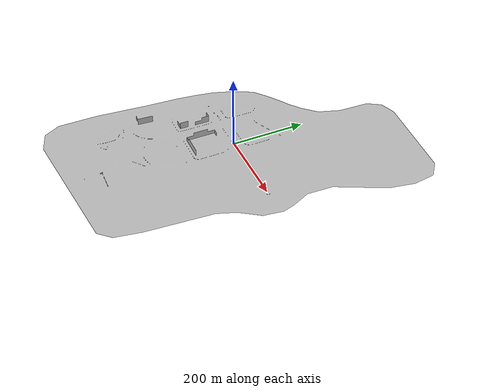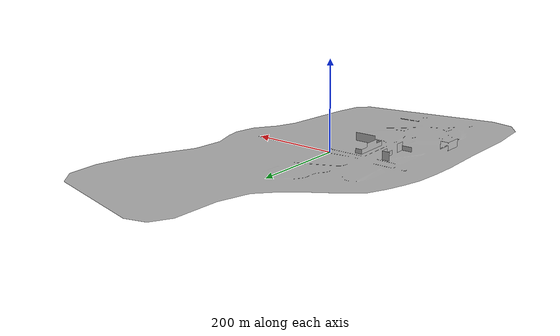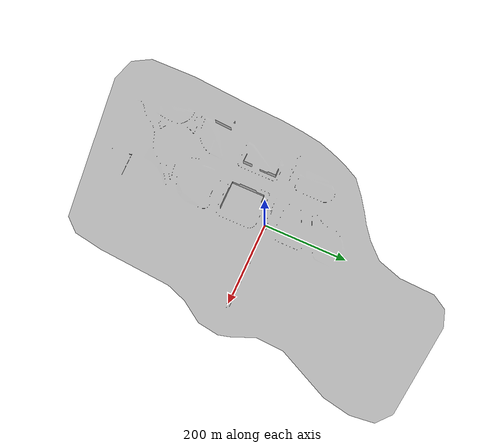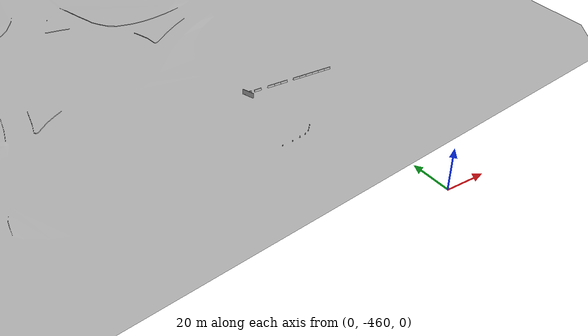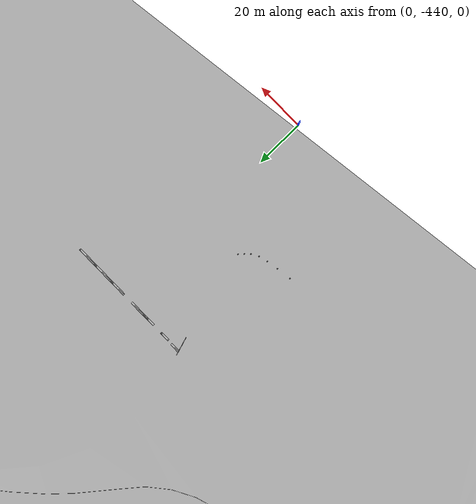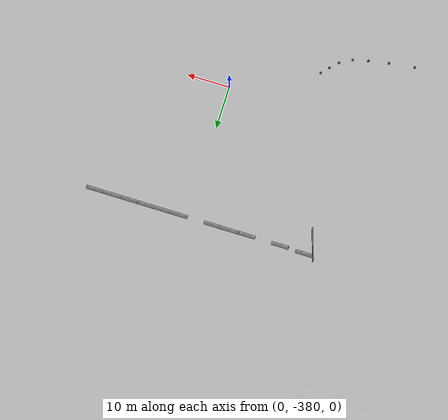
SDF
<sdf version="1.6">
 <world name="default">
  <light name="sun" type="directional">
   <pose>0 0 10 0 -0 0</pose>
   <diffuse>0.8 0.8 0.8 1</diffuse>
   <specular>0.2 0.2 0.2 1</specular>
   <attenuation>
    <range>1000</range>
    <constant>0.9</constant>
    <linear>0.01</linear>
    <quadratic>0.001</quadratic>
   </attenuation>
   <direction>-0.5 0.1 -0.9</direction>
  </light>
  <model name="cafe">
   <static>1</static>
   <link name="link">
    <collision name="collision">
     <geometry><mesh><scale>0.254 0.254 0.254</scale><uri>model://mcity/meshes/mcity.obj</uri></mesh></geometry>
    </collision>
    <visual name="visual">
     <geometry><mesh><scale>0.254 0.254 0.254</scale><uri>model://mcity/meshes/mcity.obj</uri></mesh></geometry>
    </visual>
   </link>
  </model>
  <gravity>0 0 -9.8</gravity>
  <magnetic_field>6e-06 2.3e-05 -4.2e-05</magnetic_field>
  <atmosphere type="adiabatic"/>
  <physics name="default_physics" default="0" type="ode">
   <max_step_size>0.004</max_step_size>
   <real_time_factor>1</real_time_factor>
   <real_time_update_rate>250</real_time_update_rate>
  </physics>
  <scene><ambient>0.4 0.4 0.4 1</ambient><background>0.7 0.7 0.7 1</background><shadows>1</shadows></scene>
  <audio><device>default</device></audio>
  <spherical_coordinates>
   <surface_model>EARTH_WGS84</surface_model>
   <latitude_deg>0</latitude_deg>
   <longitude_deg>0</longitude_deg>
   <elevation>0</elevation>
   <heading_deg>0</heading_deg>
  </spherical_coordinates>
  <model name="jersey_barrier">
   <static>1</static>
   <link name="link">
    <visual name="visual">
     <geometry><mesh><uri>model://jersey_barrier/meshes/jersey_barrier.dae</uri></mesh></geometry>
    </visual>
    <collision name="upright">
     <pose>0 0 0.5715 0 -0 0</pose>
     <geometry><box><size>4.06542 0.3063 1.143</size></box></geometry>
    </collision>
    <collision name="base">
     <pose>0 0 0.032258 0 -0 0</pose>
     <geometry><box><size>4.06542 0.8107 0.064516</size></box></geometry>
    </collision>
    <collision name="base2">
     <pose>0 0 0.1 0 -0 0</pose>
     <geometry><box><size>4.06542 0.65 0.1</size></box></geometry>
    </collision>
    <collision name="base3">
     <pose>0 0 0.2 0 -0 0</pose>
     <geometry><box><size>4.06542 0.5 0.1</size></box></geometry>
    </collision>
    <collision name="left-angle">
     <pose>0 -0.224 0.2401 0.9 -0 0</pose>
     <geometry><box><size>4.06542 0.5 0.064516</size></box></geometry>
    </collision>
    <collision name="right-angle">
     <pose>0 0.224 0.2401 -0.9 0 0</pose>
     <geometry><box><size>4.06542 0.5 0.064516</size></box></geometry>
    </collision>
   </link>
   <pose>-27.7486 -347.795 0 0 -0 0</pose>
  </model>
  <model name="jersey_barrier_clone">
   <static>1</static>
   <link name="link">
    <visual name="visual">
     <geometry><mesh><uri>model://jersey_barrier/meshes/jersey_barrier.dae</uri></mesh></geometry>
    </visual>
    <collision name="upright">
     <pose>0 0 0.5715 0 -0 0</pose>
     <geometry><box><size>4.06542 0.3063 1.143</size></box></geometry>
    </collision>
    <collision name="base">
     <pose>0 0 0.032258 0 -0 0</pose>
     <geometry><box><size>4.06542 0.8107 0.064516</size></box></geometry>
    </collision>
    <collision name="base2">
     <pose>0 0 0.1 0 -0 0</pose>
     <geometry><box><size>4.06542 0.65 0.1</size></box></geometry>
    </collision>
    <collision name="base3">
     <pose>0 0 0.2 0 -0 0</pose>
     <geometry><box><size>4.06542 0.5 0.1</size></box></geometry>
    </collision>
    <collision name="left-angle">
     <pose>0 -0.224 0.2401 0.9 -0 0</pose>
     <geometry><box><size>4.06542 0.5 0.064516</size></box></geometry>
    </collision>
    <collision name="right-angle">
     <pose>0 0.224 0.2401 -0.9 0 0</pose>
     <geometry><box><size>4.06542 0.5 0.064516</size></box></geometry>
    </collision>
   </link>
   <pose>-22 -348 0 0 -0 0</pose>
  </model>
  <model name="jersey_barrier_clone_clone_clone">
   <static>1</static>
   <link name="link">
    <visual name="visual">
     <geometry><mesh><uri>model://jersey_barrier/meshes/jersey_barrier.dae</uri></mesh></geometry>
    </visual>
    <collision name="upright">
     <pose>0 0 0.5715 0 -0 0</pose>
     <geometry><box><size>4.06542 0.3063 1.143</size></box></geometry>
    </collision>
    <collision name="base">
     <pose>0 0 0.032258 0 -0 0</pose>
     <geometry><box><size>4.06542 0.8107 0.064516</size></box></geometry>
    </collision>
    <collision name="base2">
     <pose>0 0 0.1 0 -0 0</pose>
     <geometry><box><size>4.06542 0.65 0.1</size></box></geometry>
    </collision>
    <collision name="base3">
     <pose>0 0 0.2 0 -0 0</pose>
     <geometry><box><size>4.06542 0.5 0.1</size></box></geometry>
    </collision>
    <collision name="left-angle">
     <pose>0 -0.224 0.2401 0.9 -0 0</pose>
     <geometry><box><size>4.06542 0.5 0.064516</size></box></geometry>
    </collision>
    <collision name="right-angle">
     <pose>0 0.224 0.2401 -0.9 0 0</pose>
     <geometry><box><size>4.06542 0.5 0.064516</size></box></geometry>
    </collision>
   </link>
   <pose>-14.0215 -348.019 0 0 -0 0</pose>
  </model>
  <model name="jersey_barrier_clone_clone_clone_clone">
   <static>1</static>
   <link name="link">
    <visual name="visual">
     <geometry><mesh><uri>model://jersey_barrier/meshes/jersey_barrier.dae</uri></mesh></geometry>
    </visual>
    <collision name="upright">
     <pose>0 0 0.5715 0 -0 0</pose>
     <geometry><box><size>4.06542 0.3063 1.143</size></box></geometry>
    </collision>
    <collision name="base">
     <pose>0 0 0.032258 0 -0 0</pose>
     <geometry><box><size>4.06542 0.8107 0.064516</size></box></geometry>
    </collision>
    <collision name="base2">
     <pose>0 0 0.1 0 -0 0</pose>
     <geometry><box><size>4.06542 0.65 0.1</size></box></geometry>
    </collision>
    <collision name="base3">
     <pose>0 0 0.2 0 -0 0</pose>
     <geometry><box><size>4.06542 0.5 0.1</size></box></geometry>
    </collision>
    <collision name="left-angle">
     <pose>0 -0.224 0.2401 0.9 -0 0</pose>
     <geometry><box><size>4.06542 0.5 0.064516</size></box></geometry>
    </collision>
    <collision name="right-angle">
     <pose>0 0.224 0.2401 -0.9 0 0</pose>
     <geometry><box><size>4.06542 0.5 0.064516</size></box></geometry>
    </collision>
   </link>
   <pose>-10 -348 0 0 -0 0</pose>
  </model>
  <model name="jersey_barrier_clone_clone_clone_clone_clone">
   <static>1</static>
   <link name="link">
    <visual name="visual">
     <geometry><mesh><uri>model://jersey_barrier/meshes/jersey_barrier.dae</uri></mesh></geometry>
    </visual>
    <collision name="upright">
     <pose>0 0 0.5715 0 -0 0</pose>
     <geometry><box><size>4.06542 0.3063 1.143</size></box></geometry>
    </collision>
    <collision name="base">
     <pose>0 0 0.032258 0 -0 0</pose>
     <geometry><box><size>4.06542 0.8107 0.064516</size></box></geometry>
    </collision>
    <collision name="base2">
     <pose>0 0 0.1 0 -0 0</pose>
     <geometry><box><size>4.06542 0.65 0.1</size></box></geometry>
    </collision>
    <collision name="base3">
     <pose>0 0 0.2 0 -0 0</pose>
     <geometry><box><size>4.06542 0.5 0.1</size></box></geometry>
    </collision>
    <collision name="left-angle">
     <pose>0 -0.224 0.2401 0.9 -0 0</pose>
     <geometry><box><size>4.06542 0.5 0.064516</size></box></geometry>
    </collision>
    <collision name="right-angle">
     <pose>0 0.224 0.2401 -0.9 0 0</pose>
     <geometry><box><size>4.06542 0.5 0.064516</size></box></geometry>
    </collision>
   </link>
   <pose>-6 -348 0 0 -0 0</pose>
  </model>
  <model name="jersey_barrier_clone_clone_clone_clone_clone_clone_clone">
   <static>1</static>
   <link name="link">
    <visual name="visual">
     <geometry><mesh><uri>model://jersey_barrier/meshes/jersey_barrier.dae</uri></mesh></geometry>
    </visual>
    <collision name="upright">
     <pose>0 0 0.5715 0 -0 0</pose>
     <geometry><box><size>4.06542 0.3063 1.143</size></box></geometry>
    </collision>
    <collision name="base">
     <pose>0 0 0.032258 0 -0 0</pose>
     <geometry><box><size>4.06542 0.8107 0.064516</size></box></geometry>
    </collision>
    <collision name="base2">
     <pose>0 0 0.1 0 -0 0</pose>
     <geometry><box><size>4.06542 0.65 0.1</size></box></geometry>
    </collision>
    <collision name="base3">
     <pose>0 0 0.2 0 -0 0</pose>
     <geometry><box><size>4.06542 0.5 0.1</size></box></geometry>
    </collision>
    <collision name="left-angle">
     <pose>0 -0.224 0.2401 0.9 -0 0</pose>
     <geometry><box><size>4.06542 0.5 0.064516</size></box></geometry>
    </collision>
    <collision name="right-angle">
     <pose>0 0.224 0.2401 -0.9 0 0</pose>
     <geometry><box><size>4.06542 0.5 0.064516</size></box></geometry>
    </collision>
   </link>
   <pose>6 -348 0 0 -0 0</pose>
  </model>
  <model name="jersey_barrier_clone_clone_clone_clone_clone_clone_clone_clone">
   <static>1</static>
   <link name="link">
    <visual name="visual">
     <geometry><mesh><uri>model://jersey_barrier/meshes/jersey_barrier.dae</uri></mesh></geometry>
    </visual>
    <collision name="upright">
     <pose>0 0 0.5715 0 -0 0</pose>
     <geometry><box><size>4.06542 0.3063 1.143</size></box></geometry>
    </collision>
    <collision name="base">
     <pose>0 0 0.032258 0 -0 0</pose>
     <geometry><box><size>4.06542 0.8107 0.064516</size></box></geometry>
    </collision>
    <collision name="base2">
     <pose>0 0 0.1 0 -0 0</pose>
     <geometry><box><size>4.06542 0.65 0.1</size></box></geometry>
    </collision>
    <collision name="base3">
     <pose>0 0 0.2 0 -0 0</pose>
     <geometry><box><size>4.06542 0.5 0.1</size></box></geometry>
    </collision>
    <collision name="left-angle">
     <pose>0 -0.224 0.2401 0.9 -0 0</pose>
     <geometry><box><size>4.06542 0.5 0.064516</size></box></geometry>
    </collision>
    <collision name="right-angle">
     <pose>0 0.224 0.2401 -0.9 0 0</pose>
     <geometry><box><size>4.06542 0.5 0.064516</size></box></geometry>
    </collision>
   </link>
   <pose>2 -348 0 0 -0 0</pose>
  </model>
  <model name="jersey_barrier_clone_clone_clone_clone_clone_clone_clone_clone_0">
   <static>1</static>
   <link name="link">
    <visual name="visual">
     <geometry><mesh><uri>model://jersey_barrier/meshes/jersey_barrier.dae</uri></mesh></geometry>
    </visual>
    <collision name="upright">
     <pose>0 0 0.5715 0 -0 0</pose>
     <geometry><box><size>4.06542 0.3063 1.143</size></box></geometry>
    </collision>
    <collision name="base">
     <pose>0 0 0.032258 0 -0 0</pose>
     <geometry><box><size>4.06542 0.8107 0.064516</size></box></geometry>
    </collision>
    <collision name="base2">
     <pose>0 0 0.1 0 -0 0</pose>
     <geometry><box><size>4.06542 0.65 0.1</size></box></geometry>
    </collision>
    <collision name="base3">
     <pose>0 0 0.2 0 -0 0</pose>
     <geometry><box><size>4.06542 0.5 0.1</size></box></geometry>
    </collision>
    <collision name="left-angle">
     <pose>0 -0.224 0.2401 0.9 -0 0</pose>
     <geometry><box><size>4.06542 0.5 0.064516</size></box></geometry>
    </collision>
    <collision name="right-angle">
     <pose>0 0.224 0.2401 -0.9 0 0</pose>
     <geometry><box><size>4.06542 0.5 0.064516</size></box></geometry>
    </collision>
   </link>
   <pose>10 -348 0 0 -0 0</pose>
  </model>
  <model name="jersey_barrier_clone_clone_clone_clone_clone_clone_clone_clone_0_clone">
   <static>1</static>
   <link name="link">
    <visual name="visual">
     <geometry><mesh><uri>model://jersey_barrier/meshes/jersey_barrier.dae</uri></mesh></geometry>
    </visual>
    <collision name="upright">
     <pose>0 0 0.5715 0 -0 0</pose>
     <geometry><box><size>4.06542 0.3063 1.143</size></box></geometry>
    </collision>
    <collision name="base">
     <pose>0 0 0.032258 0 -0 0</pose>
     <geometry><box><size>4.06542 0.8107 0.064516</size></box></geometry>
    </collision>
    <collision name="base2">
     <pose>0 0 0.1 0 -0 0</pose>
     <geometry><box><size>4.06542 0.65 0.1</size></box></geometry>
    </collision>
    <collision name="base3">
     <pose>0 0 0.2 0 -0 0</pose>
     <geometry><box><size>4.06542 0.5 0.1</size></box></geometry>
    </collision>
    <collision name="left-angle">
     <pose>0 -0.224 0.2401 0.9 -0 0</pose>
     <geometry><box><size>4.06542 0.5 0.064516</size></box></geometry>
    </collision>
    <collision name="right-angle">
     <pose>0 0.224 0.2401 -0.9 0 0</pose>
     <geometry><box><size>4.06542 0.5 0.064516</size></box></geometry>
    </collision>
   </link>
   <pose>14 -348 0 0 -0 0</pose>
  </model>
  <model name="jersey_barrier_clone_clone_clone_clone_clone_clone_clone_clone_0_clone_clone">
   <static>1</static>
   <link name="link">
    <visual name="visual">
     <geometry><mesh><uri>model://jersey_barrier/meshes/jersey_barrier.dae</uri></mesh></geometry>
    </visual>
    <collision name="upright">
     <pose>0 0 0.5715 0 -0 0</pose>
     <geometry><box><size>4.06542 0.3063 1.143</size></box></geometry>
    </collision>
    <collision name="base">
     <pose>0 0 0.032258 0 -0 0</pose>
     <geometry><box><size>4.06542 0.8107 0.064516</size></box></geometry>
    </collision>
    <collision name="base2">
     <pose>0 0 0.1 0 -0 0</pose>
     <geometry><box><size>4.06542 0.65 0.1</size></box></geometry>
    </collision>
    <collision name="base3">
     <pose>0 0 0.2 0 -0 0</pose>
     <geometry><box><size>4.06542 0.5 0.1</size></box></geometry>
    </collision>
    <collision name="left-angle">
     <pose>0 -0.224 0.2401 0.9 -0 0</pose>
     <geometry><box><size>4.06542 0.5 0.064516</size></box></geometry>
    </collision>
    <collision name="right-angle">
     <pose>0 0.224 0.2401 -0.9 0 0</pose>
     <geometry><box><size>4.06542 0.5 0.064516</size></box></geometry>
    </collision>
   </link>
   <pose>18 -348 0 0 -0 0</pose>
  </model>
  <model name="jersey_barrier_clone_clone_clone_clone_clone_clone_clone_clone_0_clone_clone_clone">
   <static>1</static>
   <link name="link">
    <visual name="visual">
     <geometry><mesh><uri>model://jersey_barrier/meshes/jersey_barrier.dae</uri></mesh></geometry>
    </visual>
    <collision name="upright">
     <pose>0 0 0.5715 0 -0 0</pose>
     <geometry><box><size>4.06542 0.3063 1.143</size></box></geometry>
    </collision>
    <collision name="base">
     <pose>0 0 0.032258 0 -0 0</pose>
     <geometry><box><size>4.06542 0.8107 0.064516</size></box></geometry>
    </collision>
    <collision name="base2">
     <pose>0 0 0.1 0 -0 0</pose>
     <geometry><box><size>4.06542 0.65 0.1</size></box></geometry>
    </collision>
    <collision name="base3">
     <pose>0 0 0.2 0 -0 0</pose>
     <geometry><box><size>4.06542 0.5 0.1</size></box></geometry>
    </collision>
    <collision name="left-angle">
     <pose>0 -0.224 0.2401 0.9 -0 0</pose>
     <geometry><box><size>4.06542 0.5 0.064516</size></box></geometry>
    </collision>
    <collision name="right-angle">
     <pose>0 0.224 0.2401 -0.9 0 0</pose>
     <geometry><box><size>4.06542 0.5 0.064516</size></box></geometry>
    </collision>
   </link>
   <pose>22 -348 0 0 -0 0</pose>
  </model>
  <model name="grey_wall">
   <static>1</static>
   <link name="link">
    <pose>0 0 1.4 0 -0 0</pose>
    <collision name="collision"><geometry><box><size>7.5 0.2 2.8</size></box></geometry></collision>
    <visual name="visual">
     <cast_shadows>0</cast_shadows>
     <geometry><box><size>7.5 0.2 2.8</size></box></geometry>
     <material>
      <script>
       <uri>model://grey_wall/materials/scripts</uri>
       <uri>model://grey_wall/materials/textures</uri>
       <name>vrc/grey_wall</name>
      </script>
     </material>
    </visual>
   </link>
   <pose>-29 -350 0 0 -0 1.87601</pose>
  </model>
  <model name="Construction Cone">
   <link name="link">
    <collision name="collision">
     <geometry>
      <mesh><scale>10 10 10</scale><uri>model://construction_cone/meshes/construction_cone.dae</uri></mesh>
     </geometry>
    </collision>
    <visual name="visual">
     <geometry>
      <mesh><scale>10 10 10</scale><uri>model://construction_cone/meshes/construction_cone.dae</uri></mesh>
     </geometry>
    </visual>
    <inertial>
     <inertia><ixx>1</ixx><ixy>0</ixy><ixz>0</ixz><iyy>1</iyy><iyz>0</iyz><izz>1</izz></inertia>
     <mass>1</mass>
    </inertial>
   </link>
   <pose>-19 -389.557 0 0 1e-06 0</pose>
  </model>
  <model name="Construction Cone_clone">
   <link name="link">
    <collision name="collision">
     <geometry>
      <mesh><scale>10 10 10</scale><uri>model://construction_cone/meshes/construction_cone.dae</uri></mesh>
     </geometry>
    </collision>
    <visual name="visual">
     <geometry>
      <mesh><scale>10 10 10</scale><uri>model://construction_cone/meshes/construction_cone.dae</uri></mesh>
     </geometry>
    </visual>
    <inertial>
     <inertia><ixx>1</ixx><ixy>0</ixy><ixz>0</ixz><iyy>1</iyy><iyz>0</iyz><izz>1</izz></inertia>
     <mass>1</mass>
    </inertial>
   </link>
   <pose>-20.5705 -391.331 -0.000117 0 -0 0</pose>
  </model>
  <model name="Construction Cone_clone_clone">
   <link name="link">
    <collision name="collision">
     <geometry>
      <mesh><scale>10 10 10</scale><uri>model://construction_cone/meshes/construction_cone.dae</uri></mesh>
     </geometry>
    </collision>
    <visual name="visual">
     <geometry>
      <mesh><scale>10 10 10</scale><uri>model://construction_cone/meshes/construction_cone.dae</uri></mesh>
     </geometry>
    </visual>
    <inertial>
     <inertia><ixx>1</ixx><ixy>0</ixy><ixz>0</ixz><iyy>1</iyy><iyz>0</iyz><izz>1</izz></inertia>
     <mass>1</mass>
    </inertial>
   </link>
   <pose>-22.3249 -393.096 -0.000156 5e-06 2e-06 0</pose>
  </model>
  <model name="Construction Cone_clone_clone_clone">
   <link name="link">
    <collision name="collision">
     <geometry>
      <mesh><scale>10 10 10</scale><uri>model://construction_cone/meshes/construction_cone.dae</uri></mesh>
     </geometry>
    </collision>
    <visual name="visual">
     <geometry>
      <mesh><scale>10 10 10</scale><uri>model://construction_cone/meshes/construction_cone.dae</uri></mesh>
     </geometry>
    </visual>
    <inertial>
     <inertia><ixx>1</ixx><ixy>0</ixy><ixz>0</ixz><iyy>1</iyy><iyz>0</iyz><izz>1</izz></inertia>
     <mass>1</mass>
    </inertial>
   </link>
   <pose>-25.1263 -394.655 -0.000117 0 -0 0</pose>
  </model>
  <model name="Construction Cone_clone_clone_clone_clone">
   <link name="link">
    <collision name="collision">
     <geometry>
      <mesh><scale>10 10 10</scale><uri>model://construction_cone/meshes/construction_cone.dae</uri></mesh>
     </geometry>
    </collision>
    <visual name="visual">
     <geometry>
      <mesh><scale>10 10 10</scale><uri>model://construction_cone/meshes/construction_cone.dae</uri></mesh>
     </geometry>
    </visual>
    <inertial>
     <inertia><ixx>1</ixx><ixy>0</ixy><ixz>0</ixz><iyy>1</iyy><iyz>0</iyz><izz>1</izz></inertia>
     <mass>1</mass>
    </inertial>
   </link>
   <pose>-28.6583 -395.535 -0.000117 -0 -0 -0</pose>
  </model>
  <model name="Construction Cone_clone_clone_clone_clone_clone">
   <link name="link">
    <collision name="collision">
     <geometry>
      <mesh><scale>10 10 10</scale><uri>model://construction_cone/meshes/construction_cone.dae</uri></mesh>
     </geometry>
    </collision>
    <visual name="visual">
     <geometry>
      <mesh><scale>10 10 10</scale><uri>model://construction_cone/meshes/construction_cone.dae</uri></mesh>
     </geometry>
    </visual>
    <inertial>
     <inertia><ixx>1</ixx><ixy>0</ixy><ixz>0</ixz><iyy>1</iyy><iyz>0</iyz><izz>1</izz></inertia>
     <mass>1</mass>
    </inertial>
   </link>
   <pose>-33.3133 -396.401 -0 -5e-06 -5e-06 0</pose>
  </model>
  <model name="Construction Cone_clone_clone_clone_clone_clone_clone">
   <link name="link">
    <collision name="collision">
     <geometry>
      <mesh><scale>10 10 10</scale><uri>model://construction_cone/meshes/construction_cone.dae</uri></mesh>
     </geometry>
    </collision>
    <visual name="visual">
     <geometry>
      <mesh><scale>10 10 10</scale><uri>model://construction_cone/meshes/construction_cone.dae</uri></mesh>
     </geometry>
    </visual>
    <inertial>
     <inertia><ixx>1</ixx><ixy>0</ixy><ixz>0</ixz><iyy>1</iyy><iyz>0</iyz><izz>1</izz></inertia>
     <mass>1</mass>
    </inertial>
   </link>
   <pose>-39.2634 -397.191 0 0 -0 0</pose>
  </model>
  <model name="cloverleaf_interchange">
   <static>1</static>
   <link name="link">
    <collision name="collision">
     <geometry>
      <mesh>
       <uri>model://cloverleaf_interchange/meshes/cloverleaf.obj</uri>
       <scale>0.0254 0.0254 0.0254</scale>
      </mesh>
     </geometry>
    </collision>
    <visual name="visual">
     <geometry>
      <mesh>
       <uri>model://cloverleaf_interchange/meshes/cloverleaf.obj</uri>
       <scale>0.0254 0.0254 0.0254</scale>
      </mesh>
     </geometry>
    </visual>
   </link>
   <pose>-295.324 348.572 0 0 -0 0</pose>
  </model>
  <model name="Speed limit">
   <static>1</static>
   <link name="link">
    <collision name="collision">
     <geometry>
      <mesh><scale>10 10 10</scale><uri>model://speed_limit_sign/meshes/speed_limit_sign.dae</uri></mesh>
     </geometry>
    </collision>
    <visual name="visual">
     <geometry>
      <mesh><scale>10 10 10</scale><uri>model://speed_limit_sign/meshes/speed_limit_sign.dae</uri></mesh>
     </geometry>
    </visual>
   </link>
   <pose>93.9624 -21.3385 0 0 -0 0</pose>
  </model>
 </world>
</sdf>
